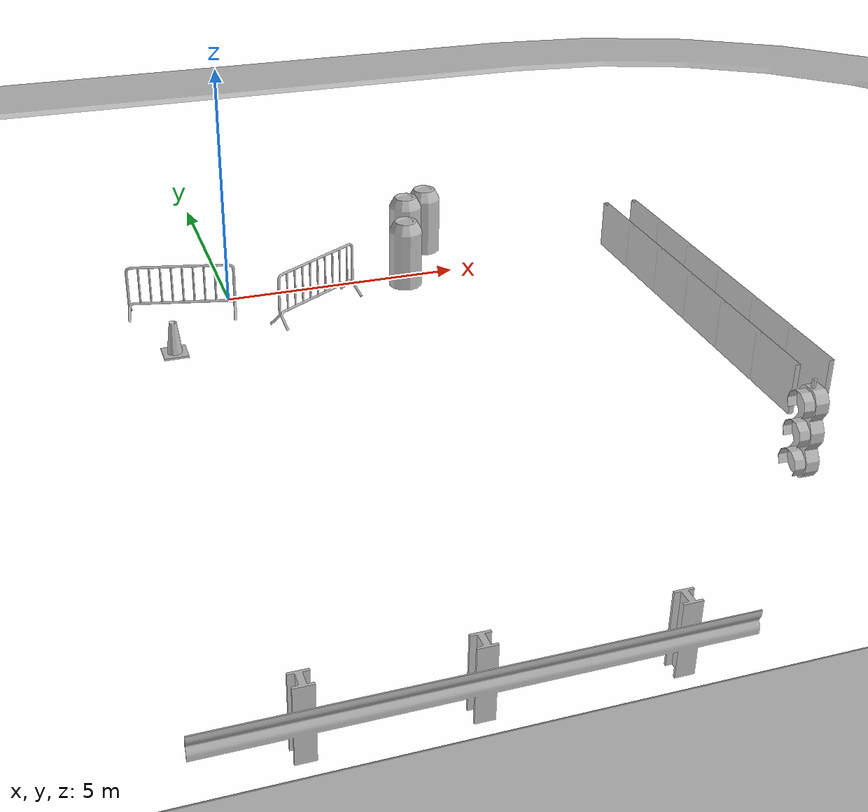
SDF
<sdf version="1.7">
 <world name="default">
  <model name="aws_robomaker_racetrack_CrashworthBucket_01_27">
   <frame name="aws_CrashworthBucket_01::__model__" attached_to="aws_CrashworthBucket_01::body">
    <pose relative_to="__model__">0 0 0 0 -0 0</pose>
   </frame>
   <link name="aws_CrashworthBucket_01::body">
    <pose relative_to="aws_CrashworthBucket_01::__model__">0 0 0 0 -0 0</pose>
    <inertial>
     <mass>5</mass>
     <inertia><ixx>1</ixx><ixy>0</ixy><ixz>0</ixz><iyy>1</iyy><iyz>0</iyz><izz>1</izz></inertia>
    </inertial>
    <visual name="visual">
     <geometry>
      <mesh>
       <uri>file://models/aws_robomaker_racetrack_CrashworthBucket_01/meshes/aws_CrashworthBucket_01_visual.DAE</uri>
      </mesh>
     </geometry>
     <material><shader type="pixel"><normal_map>__default__</normal_map></shader></material>
     <meta><layer>0</layer></meta>
    </visual>
    <collision name="collision_0">
     <geometry>
      <mesh>
       <uri>file://models/aws_robomaker_racetrack_CrashworthBucket_01/meshes/aws_CrashworthBucket_01_collision.DAE</uri>
       <scale>1 1 1</scale>
      </mesh>
     </geometry>
     <surface>
      <friction>
       <ode><mu>1</mu><mu2>1</mu2><fdir1>0 0 0</fdir1><slip1>0</slip1><slip2>0</slip2></ode>
       <torsional>
        <coefficient>1</coefficient>
        <patch_radius>0</patch_radius>
        <surface_radius>0</surface_radius>
        <use_patch_radius>1</use_patch_radius>
        <ode><slip>0</slip></ode>
       </torsional>
      </friction>
      <bounce><restitution_coefficient>0</restitution_coefficient><threshold>1e+06</threshold></bounce>
      <contact>
       <collide_without_contact>0</collide_without_contact>
       <collide_without_contact_bitmask>1</collide_without_contact_bitmask>
       <collide_bitmask>1</collide_bitmask>
       <ode>
        <soft_cfm>0</soft_cfm>
        <soft_erp>0.2</soft_erp>
        <kp>1e+13</kp>
        <kd>1</kd>
        <max_vel>0.01</max_vel>
        <min_depth>0</min_depth>
       </ode>
       <bullet>
        <split_impulse>1</split_impulse>
        <split_impulse_penetration_threshold>-0.01</split_impulse_penetration_threshold>
        <soft_cfm>0</soft_cfm>
        <soft_erp>0.2</soft_erp>
        <kp>1e+13</kp>
        <kd>1</kd>
       </bullet>
      </contact>
     </surface>
    </collision>
   </link>
   <static>1</static>
   <pose>3.82438 -0.358379 0 0 -0 0</pose>
  </model>
  <model name="aws_robomaker_racetrack_CrashworthBucket_01_48">
   <frame name="aws_CrashworthBucket_01::__model__" attached_to="aws_CrashworthBucket_01::body">
    <pose relative_to="__model__">0 0 0 0 -0 0</pose>
   </frame>
   <link name="aws_CrashworthBucket_01::body">
    <pose relative_to="aws_CrashworthBucket_01::__model__">0 0 0 0 -0 0</pose>
    <inertial>
     <mass>5</mass>
     <inertia><ixx>1</ixx><ixy>0</ixy><ixz>0</ixz><iyy>1</iyy><iyz>0</iyz><izz>1</izz></inertia>
    </inertial>
    <visual name="visual">
     <geometry>
      <mesh>
       <uri>file://models/aws_robomaker_racetrack_CrashworthBucket_01/meshes/aws_CrashworthBucket_01_visual.DAE</uri>
      </mesh>
     </geometry>
     <material><shader type="pixel"><normal_map>__default__</normal_map></shader></material>
     <meta><layer>0</layer></meta>
    </visual>
    <collision name="collision_0">
     <geometry>
      <mesh>
       <uri>file://models/aws_robomaker_racetrack_CrashworthBucket_01/meshes/aws_CrashworthBucket_01_collision.DAE</uri>
       <scale>1 1 1</scale>
      </mesh>
     </geometry>
     <surface>
      <friction>
       <ode><mu>1</mu><mu2>1</mu2><fdir1>0 0 0</fdir1><slip1>0</slip1><slip2>0</slip2></ode>
       <torsional>
        <coefficient>1</coefficient>
        <patch_radius>0</patch_radius>
        <surface_radius>0</surface_radius>
        <use_patch_radius>1</use_patch_radius>
        <ode><slip>0</slip></ode>
       </torsional>
      </friction>
      <bounce><restitution_coefficient>0</restitution_coefficient><threshold>1e+06</threshold></bounce>
      <contact>
       <collide_without_contact>0</collide_without_contact>
       <collide_without_contact_bitmask>1</collide_without_contact_bitmask>
       <collide_bitmask>1</collide_bitmask>
       <ode>
        <soft_cfm>0</soft_cfm>
        <soft_erp>0.2</soft_erp>
        <kp>1e+13</kp>
        <kd>1</kd>
        <max_vel>0.01</max_vel>
        <min_depth>0</min_depth>
       </ode>
       <bullet>
        <split_impulse>1</split_impulse>
        <split_impulse_penetration_threshold>-0.01</split_impulse_penetration_threshold>
        <soft_cfm>0</soft_cfm>
        <soft_erp>0.2</soft_erp>
        <kp>1e+13</kp>
        <kd>1</kd>
       </bullet>
      </contact>
     </surface>
    </collision>
   </link>
   <static>1</static>
   <pose>4.78436 1.25544 0 0 0 -0.004687</pose>
  </model>
  <model name="aws_robomaker_racetrack_CrashworthBucket_01_49">
   <frame name="aws_CrashworthBucket_01::__model__" attached_to="aws_CrashworthBucket_01::body">
    <pose relative_to="__model__">0 0 0 0 -0 0</pose>
   </frame>
   <link name="aws_CrashworthBucket_01::body">
    <pose relative_to="aws_CrashworthBucket_01::__model__">0 0 0 0 -0 0</pose>
    <inertial>
     <mass>5</mass>
     <inertia><ixx>1</ixx><ixy>0</ixy><ixz>0</ixz><iyy>1</iyy><iyz>0</iyz><izz>1</izz></inertia>
    </inertial>
    <visual name="visual">
     <geometry>
      <mesh>
       <uri>file://models/aws_robomaker_racetrack_CrashworthBucket_01/meshes/aws_CrashworthBucket_01_visual.DAE</uri>
      </mesh>
     </geometry>
     <material><shader type="pixel"><normal_map>__default__</normal_map></shader></material>
     <meta><layer>0</layer></meta>
    </visual>
    <collision name="collision_0">
     <geometry>
      <mesh>
       <uri>file://models/aws_robomaker_racetrack_CrashworthBucket_01/meshes/aws_CrashworthBucket_01_collision.DAE</uri>
       <scale>1 1 1</scale>
      </mesh>
     </geometry>
     <surface>
      <friction>
       <ode><mu>1</mu><mu2>1</mu2><fdir1>0 0 0</fdir1><slip1>0</slip1><slip2>0</slip2></ode>
       <torsional>
        <coefficient>1</coefficient>
        <patch_radius>0</patch_radius>
        <surface_radius>0</surface_radius>
        <use_patch_radius>1</use_patch_radius>
        <ode><slip>0</slip></ode>
       </torsional>
      </friction>
      <bounce><restitution_coefficient>0</restitution_coefficient><threshold>1e+06</threshold></bounce>
      <contact>
       <collide_without_contact>0</collide_without_contact>
       <collide_without_contact_bitmask>1</collide_without_contact_bitmask>
       <collide_bitmask>1</collide_bitmask>
       <ode>
        <soft_cfm>0</soft_cfm>
        <soft_erp>0.2</soft_erp>
        <kp>1e+13</kp>
        <kd>1</kd>
        <max_vel>0.01</max_vel>
        <min_depth>0</min_depth>
       </ode>
       <bullet>
        <split_impulse>1</split_impulse>
        <split_impulse_penetration_threshold>-0.01</split_impulse_penetration_threshold>
        <soft_cfm>0</soft_cfm>
        <soft_erp>0.2</soft_erp>
        <kp>1e+13</kp>
        <kd>1</kd>
       </bullet>
      </contact>
     </surface>
    </collision>
   </link>
   <static>1</static>
   <pose>4.1948 0.806848 0.054 0 0 -0.002707</pose>
  </model>
  <model name="aws_robomaker_racetrack_FenceMesh_01_00">
   <frame name="aws_FenceMesh_01::__model__" attached_to="aws_FenceMesh_01::body">
    <pose relative_to="__model__">0 0 0 0 -0 0</pose>
   </frame>
   <link name="aws_FenceMesh_01::body">
    <pose relative_to="aws_FenceMesh_01::__model__">0 0 0 0 -0 0</pose>
    <inertial>
     <mass>1</mass>
     <inertia><ixx>1</ixx><ixy>0</ixy><ixz>0</ixz><iyy>1</iyy><iyz>0</iyz><izz>1</izz></inertia>
    </inertial>
    <visual name="visual">
     <geometry>
      <mesh><uri>file://models/aws_robomaker_racetrack_FenceMesh_01/meshes/aws_FenceMesh_01_visual.DAE</uri></mesh>
     </geometry>
     <material><shader type="pixel"><normal_map>__default__</normal_map></shader></material>
     <meta><layer>2</layer></meta>
    </visual>
    <collision name="collision_0">
     <geometry>
      <mesh>
       <uri>file://models/aws_robomaker_racetrack_FenceMesh_01/meshes/aws_FenceMesh_01_collision.DAE</uri>
       <scale>1 1 1</scale>
      </mesh>
     </geometry>
     <surface>
      <friction>
       <ode><mu>1</mu><mu2>1</mu2><fdir1>0 0 0</fdir1><slip1>0</slip1><slip2>0</slip2></ode>
       <torsional>
        <coefficient>1</coefficient>
        <patch_radius>0</patch_radius>
        <surface_radius>0</surface_radius>
        <use_patch_radius>1</use_patch_radius>
        <ode><slip>0</slip></ode>
       </torsional>
      </friction>
      <bounce><restitution_coefficient>0</restitution_coefficient><threshold>1e+06</threshold></bounce>
      <contact>
       <collide_without_contact>0</collide_without_contact>
       <collide_without_contact_bitmask>1</collide_without_contact_bitmask>
       <collide_bitmask>2</collide_bitmask>
       <ode>
        <soft_cfm>0</soft_cfm>
        <soft_erp>0.2</soft_erp>
        <kp>1e+13</kp>
        <kd>1</kd>
        <max_vel>0.01</max_vel>
        <min_depth>0</min_depth>
       </ode>
       <bullet>
        <split_impulse>1</split_impulse>
        <split_impulse_penetration_threshold>-0.01</split_impulse_penetration_threshold>
        <soft_cfm>0</soft_cfm>
        <soft_erp>0.2</soft_erp>
        <kp>1e+13</kp>
        <kd>1</kd>
       </bullet>
      </contact>
     </surface>
    </collision>
   </link>
   <static>1</static>
   <pose>4.2331 -11.1761 5.05223 0 0 -0.006038</pose>
  </model>
  <model name="aws_robomaker_racetrack_FenceMesh_01_03">
   <frame name="aws_FenceMesh_01::__model__" attached_to="aws_FenceMesh_01::body">
    <pose relative_to="__model__">0 0 0 0 -0 0</pose>
   </frame>
   <link name="aws_FenceMesh_01::body">
    <pose relative_to="aws_FenceMesh_01::__model__">0 0 0 0 -0 0</pose>
    <inertial>
     <mass>1</mass>
     <inertia><ixx>1</ixx><ixy>0</ixy><ixz>0</ixz><iyy>1</iyy><iyz>0</iyz><izz>1</izz></inertia>
    </inertial>
    <visual name="visual">
     <geometry>
      <mesh><uri>file://models/aws_robomaker_racetrack_FenceMesh_01/meshes/aws_FenceMesh_01_visual.DAE</uri></mesh>
     </geometry>
     <material><shader type="pixel"><normal_map>__default__</normal_map></shader></material>
     <meta><layer>2</layer></meta>
    </visual>
    <collision name="collision_0">
     <geometry>
      <mesh>
       <uri>file://models/aws_robomaker_racetrack_FenceMesh_01/meshes/aws_FenceMesh_01_collision.DAE</uri>
       <scale>1 1 1</scale>
      </mesh>
     </geometry>
     <surface>
      <friction>
       <ode><mu>1</mu><mu2>1</mu2><fdir1>0 0 0</fdir1><slip1>0</slip1><slip2>0</slip2></ode>
       <torsional>
        <coefficient>1</coefficient>
        <patch_radius>0</patch_radius>
        <surface_radius>0</surface_radius>
        <use_patch_radius>1</use_patch_radius>
        <ode><slip>0</slip></ode>
       </torsional>
      </friction>
      <bounce><restitution_coefficient>0</restitution_coefficient><threshold>1e+06</threshold></bounce>
      <contact>
       <collide_without_contact>0</collide_without_contact>
       <collide_without_contact_bitmask>1</collide_without_contact_bitmask>
       <collide_bitmask>2</collide_bitmask>
       <ode>
        <soft_cfm>0</soft_cfm>
        <soft_erp>0.2</soft_erp>
        <kp>1e+13</kp>
        <kd>1</kd>
        <max_vel>0.01</max_vel>
        <min_depth>0</min_depth>
       </ode>
       <bullet>
        <split_impulse>1</split_impulse>
        <split_impulse_penetration_threshold>-0.01</split_impulse_penetration_threshold>
        <soft_cfm>0</soft_cfm>
        <soft_erp>0.2</soft_erp>
        <kp>1e+13</kp>
        <kd>1</kd>
       </bullet>
      </contact>
     </surface>
    </collision>
   </link>
   <static>1</static>
   <pose>4.67467 -11.1966 5.05223 0 0 -0.006038</pose>
  </model>
  <model name="aws_robomaker_racetrack_Fence_01_10">
   <frame name="aws_Fence_01::__model__" attached_to="aws_Fence_01::body">
    <pose relative_to="__model__">0 0 0 0 -0 0</pose>
   </frame>
   <link name="aws_Fence_01::body">
    <pose relative_to="aws_Fence_01::__model__">0 0 0 0 -0 0</pose>
    <inertial>
     <mass>5</mass>
     <inertia><ixx>1</ixx><ixy>0</ixy><ixz>0</ixz><iyy>1</iyy><iyz>0</iyz><izz>1</izz></inertia>
    </inertial>
    <visual name="visual">
     <geometry>
      <mesh><uri>file://models/aws_robomaker_racetrack_Fence_01/meshes/aws_Fence_01_visual.DAE</uri></mesh>
     </geometry>
     <material><shader type="pixel"><normal_map>__default__</normal_map></shader></material>
     <meta><layer>0</layer></meta>
    </visual>
    <collision name="collision_0">
     <geometry>
      <mesh>
       <uri>file://models/aws_robomaker_racetrack_Fence_01/meshes/aws_Fence_01_collision.DAE</uri>
       <scale>1 1 1</scale>
      </mesh>
     </geometry>
     <surface>
      <friction>
       <ode><mu>1</mu><mu2>1</mu2><fdir1>0 0 0</fdir1><slip1>0</slip1><slip2>0</slip2></ode>
       <torsional>
        <coefficient>1</coefficient>
        <patch_radius>0</patch_radius>
        <surface_radius>0</surface_radius>
        <use_patch_radius>1</use_patch_radius>
        <ode><slip>0</slip></ode>
       </torsional>
      </friction>
      <bounce><restitution_coefficient>0</restitution_coefficient><threshold>1e+06</threshold></bounce>
      <contact>
       <collide_without_contact>0</collide_without_contact>
       <collide_without_contact_bitmask>1</collide_without_contact_bitmask>
       <collide_bitmask>1</collide_bitmask>
       <ode>
        <soft_cfm>0</soft_cfm>
        <soft_erp>0.2</soft_erp>
        <kp>1e+13</kp>
        <kd>1</kd>
        <max_vel>0.01</max_vel>
        <min_depth>0</min_depth>
       </ode>
       <bullet>
        <split_impulse>1</split_impulse>
        <split_impulse_penetration_threshold>-0.01</split_impulse_penetration_threshold>
        <soft_cfm>0</soft_cfm>
        <soft_erp>0.2</soft_erp>
        <kp>1e+13</kp>
        <kd>1</kd>
       </bullet>
      </contact>
     </surface>
    </collision>
   </link>
   <static>1</static>
   <pose>0.720398 -13.1346 0.054671 0 -0 1.57158</pose>
  </model>
  <model name="aws_robomaker_racetrack_Fence_02_00">
   <frame name="aws_Fence_02::__model__" attached_to="aws_Fence_02::body">
    <pose relative_to="__model__">0 0 0 0 -0 0</pose>
   </frame>
   <link name="aws_Fence_02::body">
    <pose relative_to="aws_Fence_02::__model__">0 0 0 0 -0 0</pose>
    <inertial>
     <mass>5</mass>
     <inertia><ixx>9.6</ixx><ixy>0</ixy><ixz>0</ixz><iyy>8.2</iyy><iyz>0</iyz><izz>2.1</izz></inertia>
    </inertial>
    <visual name="visual">
     <geometry>
      <mesh><uri>file://models/aws_robomaker_racetrack_Fence_02/meshes/aws_Fence_02_visual.DAE</uri></mesh>
     </geometry>
     <material><shader type="pixel"><normal_map>__default__</normal_map></shader></material>
     <meta><layer>0</layer></meta>
    </visual>
    <collision name="collision_0">
     <geometry>
      <mesh>
       <uri>file://models/aws_robomaker_racetrack_Fence_02/meshes/aws_Fence_02_collision.DAE</uri>
       <scale>1 1 1</scale>
      </mesh>
     </geometry>
     <surface>
      <friction>
       <ode><mu>1</mu><mu2>1</mu2><fdir1>0 0 0</fdir1><slip1>0</slip1><slip2>0</slip2></ode>
       <torsional>
        <coefficient>1</coefficient>
        <patch_radius>0</patch_radius>
        <surface_radius>0</surface_radius>
        <use_patch_radius>1</use_patch_radius>
        <ode><slip>0</slip></ode>
       </torsional>
      </friction>
      <bounce><restitution_coefficient>0</restitution_coefficient><threshold>1e+06</threshold></bounce>
      <contact>
       <collide_without_contact>0</collide_without_contact>
       <collide_without_contact_bitmask>1</collide_without_contact_bitmask>
       <collide_bitmask>1</collide_bitmask>
      </contact>
     </surface>
    </collision>
   </link>
   <static>1</static>
   <pose>-1.05264 -0.5238 0.040535 -0.008781 0.086261 -1.77545</pose>
  </model>
  <model name="aws_robomaker_racetrack_Fence_02_12">
   <frame name="aws_Fence_02::__model__" attached_to="aws_Fence_02::body">
    <pose relative_to="__model__">0 0 0 0 -0 0</pose>
   </frame>
   <link name="aws_Fence_02::body">
    <pose relative_to="aws_Fence_02::__model__">0 0 0 0 -0 0</pose>
    <inertial>
     <mass>5</mass>
     <inertia><ixx>9.6</ixx><ixy>0</ixy><ixz>0</ixz><iyy>8.2</iyy><iyz>0</iyz><izz>2.1</izz></inertia>
    </inertial>
    <visual name="visual">
     <geometry>
      <mesh><uri>file://models/aws_robomaker_racetrack_Fence_02/meshes/aws_Fence_02_visual.DAE</uri></mesh>
     </geometry>
     <material><shader type="pixel"><normal_map>__default__</normal_map></shader></material>
     <meta><layer>0</layer></meta>
    </visual>
    <collision name="collision_0">
     <geometry>
      <mesh>
       <uri>file://models/aws_robomaker_racetrack_Fence_02/meshes/aws_Fence_02_collision.DAE</uri>
       <scale>1 1 1</scale>
      </mesh>
     </geometry>
     <surface>
      <friction>
       <ode><mu>1</mu><mu2>1</mu2><fdir1>0 0 0</fdir1><slip1>0</slip1><slip2>0</slip2></ode>
       <torsional>
        <coefficient>1</coefficient>
        <patch_radius>0</patch_radius>
        <surface_radius>0</surface_radius>
        <use_patch_radius>1</use_patch_radius>
        <ode><slip>0</slip></ode>
       </torsional>
      </friction>
      <bounce><restitution_coefficient>0</restitution_coefficient><threshold>1e+06</threshold></bounce>
      <contact>
       <collide_without_contact>0</collide_without_contact>
       <collide_without_contact_bitmask>1</collide_without_contact_bitmask>
       <collide_bitmask>1</collide_bitmask>
      </contact>
     </surface>
    </collision>
   </link>
   <static>1</static>
   <pose>1.65856 -1.03383 0 0 0 -1.02955</pose>
  </model>
  <model name="aws_robomaker_racetrack_RaceStartLight_01_00">
   <frame name="aws_RaceStartLight_01::__model__" attached_to="aws_RaceStartLight_01::body">
    <pose relative_to="__model__">0 0 0 0 -0 0</pose>
   </frame>
   <link name="aws_RaceStartLight_01::body">
    <pose relative_to="aws_RaceStartLight_01::__model__">0 0 0 0 -0 0</pose>
    <inertial>
     <mass>1</mass>
     <inertia><ixx>1</ixx><ixy>0</ixy><ixz>0</ixz><iyy>1</iyy><iyz>0</iyz><izz>1</izz></inertia>
    </inertial>
    <visual name="visual">
     <geometry>
      <mesh>
       <uri>file://models/aws_robomaker_racetrack_RaceStartLight_01/meshes/aws_RaceStartLight_01_visual.DAE</uri>
      </mesh>
     </geometry>
     <material><shader type="pixel"><normal_map>__default__</normal_map></shader></material>
     <meta><layer>2</layer></meta>
    </visual>
    <collision name="collision_1">
     <geometry>
      <mesh>
       <uri>file://models/aws_robomaker_racetrack_RaceStartLight_01/meshes/aws_RaceStartLight_01_collision.DAE</uri>
       <scale>1 1 1</scale>
      </mesh>
     </geometry>
     <surface>
      <friction>
       <ode><mu>1</mu><mu2>1</mu2><fdir1>0 0 0</fdir1><slip1>0</slip1><slip2>0</slip2></ode>
       <torsional>
        <coefficient>1</coefficient>
        <patch_radius>0</patch_radius>
        <surface_radius>0</surface_radius>
        <use_patch_radius>1</use_patch_radius>
        <ode><slip>0</slip></ode>
       </torsional>
      </friction>
      <bounce><restitution_coefficient>0</restitution_coefficient><threshold>1e+06</threshold></bounce>
      <contact>
       <collide_without_contact>0</collide_without_contact>
       <collide_without_contact_bitmask>1</collide_without_contact_bitmask>
       <collide_bitmask>2</collide_bitmask>
       <ode>
        <soft_cfm>0</soft_cfm>
        <soft_erp>0.2</soft_erp>
        <kp>1e+13</kp>
        <kd>1</kd>
        <max_vel>0.01</max_vel>
        <min_depth>0</min_depth>
       </ode>
       <bullet>
        <split_impulse>1</split_impulse>
        <split_impulse_penetration_threshold>-0.01</split_impulse_penetration_threshold>
        <soft_cfm>0</soft_cfm>
        <soft_erp>0.2</soft_erp>
        <kp>1e+13</kp>
        <kd>1</kd>
       </bullet>
      </contact>
     </surface>
    </collision>
   </link>
   <static>1</static>
   <pose>4.13359 -14.1692 5.08709 0 -0 0</pose>
  </model>
  <model name="aws_robomaker_racetrack_Track_05_00">
   <frame name="aws_Track_05::__model__" attached_to="aws_Track_05::body">
    <pose relative_to="__model__">0 0 0 0 -0 0</pose>
   </frame>
   <link name="aws_Track_05::body">
    <pose relative_to="aws_Track_05::__model__">0 0 0 0 -0 0</pose>
    <inertial>
     <mass>1000</mass>
     <inertia><ixx>1</ixx><ixy>0</ixy><ixz>0</ixz><iyy>1</iyy><iyz>0</iyz><izz>1</izz></inertia>
    </inertial>
    <visual name="visual">
     <geometry>
      <mesh><uri>file://models/aws_robomaker_racetrack_Track_05/meshes/aws_Track_05_visual.DAE</uri></mesh>
     </geometry>
     <material><shader type="pixel"><normal_map>__default__</normal_map></shader></material>
     <meta><layer>0</layer></meta>
    </visual>
    <collision name="collision_0">
     <geometry>
      <mesh>
       <uri>file://models/aws_robomaker_racetrack_Track_05/meshes/aws_Track_05_collision.DAE</uri>
       <scale>1 1 1</scale>
      </mesh>
     </geometry>
     <surface>
      <friction>
       <ode><mu>100</mu><mu2>50</mu2><fdir1>0 0 0</fdir1><slip1>0</slip1><slip2>0</slip2></ode>
       <torsional>
        <coefficient>1</coefficient>
        <patch_radius>0</patch_radius>
        <surface_radius>0</surface_radius>
        <use_patch_radius>1</use_patch_radius>
        <ode><slip>0</slip></ode>
       </torsional>
      </friction>
      <bounce><restitution_coefficient>0</restitution_coefficient><threshold>1e+06</threshold></bounce>
      <contact>
       <collide_without_contact>0</collide_without_contact>
       <collide_without_contact_bitmask>1</collide_without_contact_bitmask>
       <collide_bitmask>1</collide_bitmask>
       <ode>
        <soft_cfm>0</soft_cfm>
        <soft_erp>0.2</soft_erp>
        <kp>1e+13</kp>
        <kd>1</kd>
        <max_vel>0.01</max_vel>
        <min_depth>0</min_depth>
       </ode>
       <bullet>
        <split_impulse>1</split_impulse>
        <split_impulse_penetration_threshold>-0.01</split_impulse_penetration_threshold>
        <soft_cfm>0</soft_cfm>
        <soft_erp>0.2</soft_erp>
        <kp>1e+13</kp>
        <kd>1</kd>
       </bullet>
      </contact>
     </surface>
    </collision>
   </link>
   <static>1</static>
   <pose>0 0 0.051 0 -0 0</pose>
  </model>
  <model name="aws_robomaker_racetrack_TrafficCone_01_08">
   <frame name="aws_TrafficCone_01::__model__" attached_to="aws_TrafficCone_01::body">
    <pose relative_to="__model__">0 0 0 0 -0 0</pose>
   </frame>
   <link name="aws_TrafficCone_01::body">
    <pose relative_to="aws_TrafficCone_01::__model__">0 0 0 0 -0 0</pose>
    <inertial>
     <mass>0.5</mass>
     <inertia><ixx>1</ixx><ixy>0</ixy><ixz>0</ixz><iyy>1</iyy><iyz>0</iyz><izz>1</izz></inertia>
    </inertial>
    <visual name="visual">
     <geometry>
      <mesh>
       <uri>file://models/aws_robomaker_racetrack_TrafficCone_01/meshes/aws_TrafficCone_01_visual.DAE</uri>
      </mesh>
     </geometry>
     <material><shader type="pixel"><normal_map>__default__</normal_map></shader></material>
     <meta><layer>0</layer></meta>
    </visual>
    <collision name="collision_0">
     <geometry>
      <mesh>
       <uri>file://models/aws_robomaker_racetrack_TrafficCone_01/meshes/aws_TrafficCone_01_coliision.DAE</uri>
       <scale>1 1 1</scale>
      </mesh>
     </geometry>
     <surface>
      <friction>
       <ode><mu>1</mu><mu2>1</mu2><fdir1>0 0 0</fdir1><slip1>0</slip1><slip2>0</slip2></ode>
       <torsional>
        <coefficient>1</coefficient>
        <patch_radius>0</patch_radius>
        <surface_radius>0</surface_radius>
        <use_patch_radius>1</use_patch_radius>
        <ode><slip>0</slip></ode>
       </torsional>
      </friction>
      <bounce><restitution_coefficient>0</restitution_coefficient><threshold>1e+06</threshold></bounce>
      <contact>
       <collide_without_contact>0</collide_without_contact>
       <collide_without_contact_bitmask>1</collide_without_contact_bitmask>
       <collide_bitmask>1</collide_bitmask>
       <ode>
        <soft_cfm>0</soft_cfm>
        <soft_erp>0.2</soft_erp>
        <kp>1e+13</kp>
        <kd>1</kd>
        <max_vel>0.01</max_vel>
        <min_depth>0</min_depth>
       </ode>
       <bullet>
        <split_impulse>1</split_impulse>
        <split_impulse_penetration_threshold>-0.01</split_impulse_penetration_threshold>
        <soft_cfm>0</soft_cfm>
        <soft_erp>0.2</soft_erp>
        <kp>1e+13</kp>
        <kd>1</kd>
       </bullet>
      </contact>
     </surface>
    </collision>
   </link>
   <static>1</static>
   <pose>-1.47869 -2.04792 0 0 -0 0</pose>
  </model>
  <model name="ground_plane">
   <pose>0 0 -1.67319e+06 0 -0 0</pose>
   <link name="link">
    <pose>0 0 -1 0 -0 0</pose>
    <inertial>
     <inertia><ixx>1</ixx><ixy>0</ixy><ixz>0</ixz><iyy>1</iyy><iyz>0</iyz><izz>1</izz></inertia>
     <mass>1</mass>
    </inertial>
    <velocity>0 0 0 0 -0 0</velocity>
    <acceleration>0 0 0 0 -0 0</acceleration>
   </link>
   <scale>1 1 1</scale>
  </model>
 </world>
</sdf>
